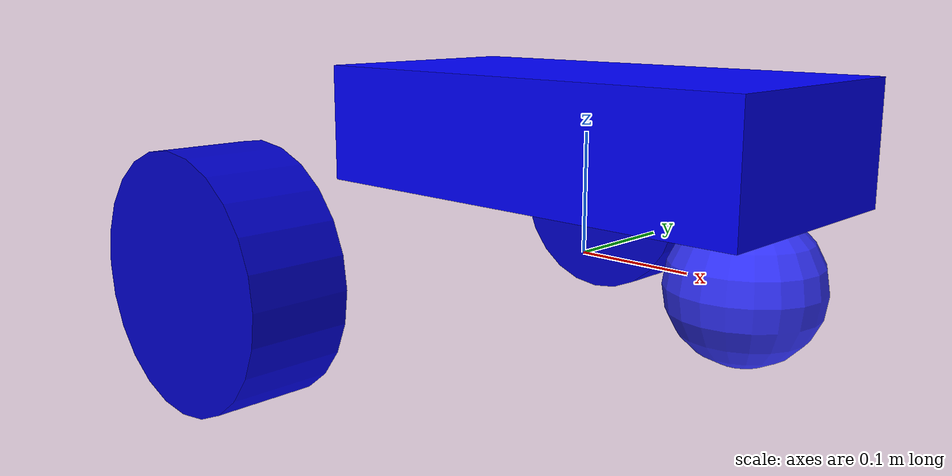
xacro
<?xml version="1.0"?>
<robot name="SimpleRobot" xmlns:xacro="http://ros.org/wiki/xacro">

  <!-- 底盘 -->
  <link name="base_link">
    <visual>
      <origin xyz="0 0 0.1"/>
      <geometry><box size="0.4 0.2 0.1"/></geometry>
      <material name="blue"><color rgba="0 0 1 1"/></material>
    </visual>
    <collision>
      <origin xyz="0 0 0.1"/>
      <geometry><box size="0.38 0.18 0.09"/></geometry>
    </collision>
    <inertial>
      <mass value="0.5"/>
      <inertia ixx="0.01" ixy="0.0" ixz="0.0" iyy="0.01" iyz="0.0" izz="0.01"/>
    </inertial>
  </link>

  <!-- 左轮 -->
  <link name="wheel_left_link">
    <visual>
      <origin xyz="0 0 0" rpy="1.5708 0 0"/>
      <geometry><cylinder radius="0.1" length="0.08"/></geometry>
      <material name="dark_blue"><color rgba="0 0 0.8 1"/></material>
    </visual>
    <collision>
      <origin xyz="0 0 0" rpy="1.5708 0 0"/>
      <geometry><cylinder radius="0.095" length="0.07"/></geometry>
    </collision>
    <inertial>
      <mass value="0.05"/>
      <inertia ixx="0.0001" ixy="0.0" ixz="0.0" iyy="0.0001" iyz="0.0" izz="0.0001"/>
    </inertial>
  </link>
  <joint name="wheel_left_joint" type="continuous">
    <parent link="base_link"/>
    <child link="wheel_left_link"/>
    <origin xyz="-0.15 -0.25 0"/>
    <axis xyz="0 1 0"/>
  </joint>

  <!-- 右轮 -->
  <link name="wheel_right_link">
    <visual>
      <origin xyz="0 0 0" rpy="1.5708 0 0"/>
      <geometry><cylinder radius="0.1" length="0.08"/></geometry>
      <material name="dark_blue"><color rgba="0 0 0.8 1"/></material>
    </visual>
    <collision>
      <origin xyz="0 0 0" rpy="1.5708 0 0"/>
      <geometry><cylinder radius="0.095" length="0.07"/></geometry>
    </collision>
    <inertial>
      <mass value="0.05"/>
      <inertia ixx="0.0001" ixy="0.0" ixz="0.0" iyy="0.0001" iyz="0.0" izz="0.0001"/>
    </inertial>
  </link>
  <joint name="wheel_right_joint" type="continuous">
    <parent link="base_link"/>
    <child link="wheel_right_link"/>
    <origin xyz="-0.15 0.25 0"/>
    <axis xyz="0 1 0"/>
  </joint>

  <!-- 万向轮 -->
  <link name="caster_link">
    <visual>
      <geometry><sphere radius="0.06"/></geometry>
      <material name="light_blue"><color rgba="0.2 0.2 1 1"/></material>
    </visual>
    <collision>
      <geometry><sphere radius="0.055"/></geometry>
    </collision>
    <inertial>
      <mass value="0.02"/>
      <inertia ixx="0.00001" ixy="0" ixz="0" iyy="0.00001" iyz="0" izz="0.00001"/>
    </inertial>
  </link>
  <joint name="caster_joint" type="fixed">
    <parent link="base_link"/>
    <child link="caster_link"/>
    <origin xyz="0.15 0 0"/>
  </joint>

  <!-- 关键：删除所有锁死、限制、边界 -->
  <gazebo reference="base_link">
    <maxContacts>0</maxContacts>
    <minDepth>0</minDepth>
  </gazebo>

  <gazebo reference="wheel_left_link">
    <mu1>0.1</mu1>
    <mu2>0.1</mu2>
    <friction>0.0</friction>
    <rolling_friction>0.0</rolling_friction>
  </gazebo>

  <gazebo reference="wheel_right_link">
    <mu1>0.1</mu1>
    <mu2>0.1</mu2>
    <friction>0.0</friction>
    <rolling_friction>0.0</rolling_friction>
  </gazebo>

  <gazebo reference="caster_link">
    <mu1>0.0</mu1>
    <mu2>0.0</mu2>
    <friction>0.0</friction>
    <rolling_friction>0.0</rolling_friction>
  </gazebo>

  <!-- 驱动：无锁、无边界、无限制、自由移动 -->
  <gazebo>
    <plugin name="differential_drive_controller" filename="libgazebo_ros_diff_drive.so">
      <alwaysOn>true</alwaysOn>
      <leftJoint>wheel_left_joint</leftJoint>
      <rightJoint>wheel_right_joint</rightJoint>
      <wheelSeparation>0.5</wheelSeparation>
      <wheelDiameter>0.2</wheelDiameter>
      <torque>100</torque>
      <maxSpeed>10</maxSpeed>
      <angularMaxSpeed>10</angularMaxSpeed>
      <commandTopic>cmd_vel</commandTopic>
      <odometryTopic>odom</odometryTopic>
      <odometryFrame>odom</odometryFrame>
      <robotBaseFrame>base_link</robotBaseFrame>
    </plugin>
  </gazebo>

</robot>
